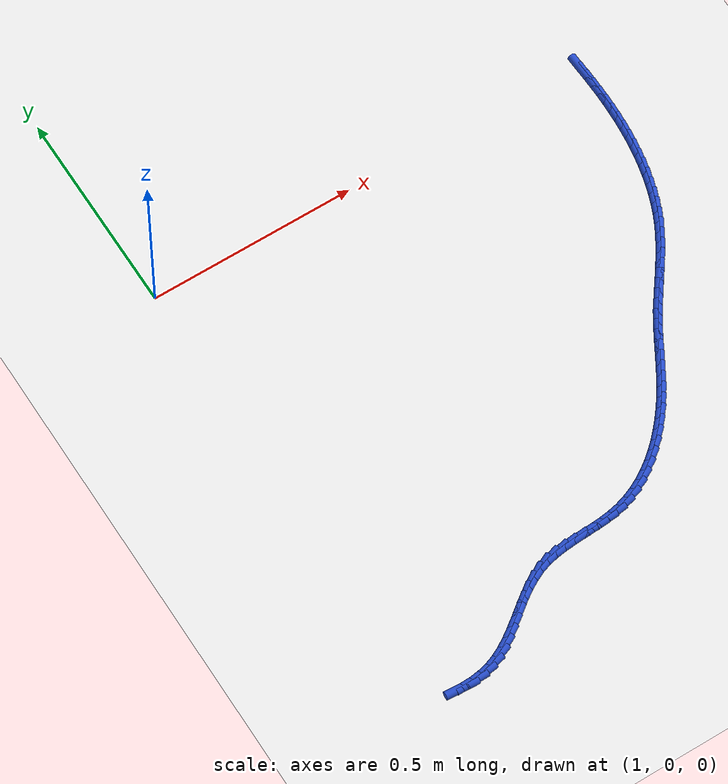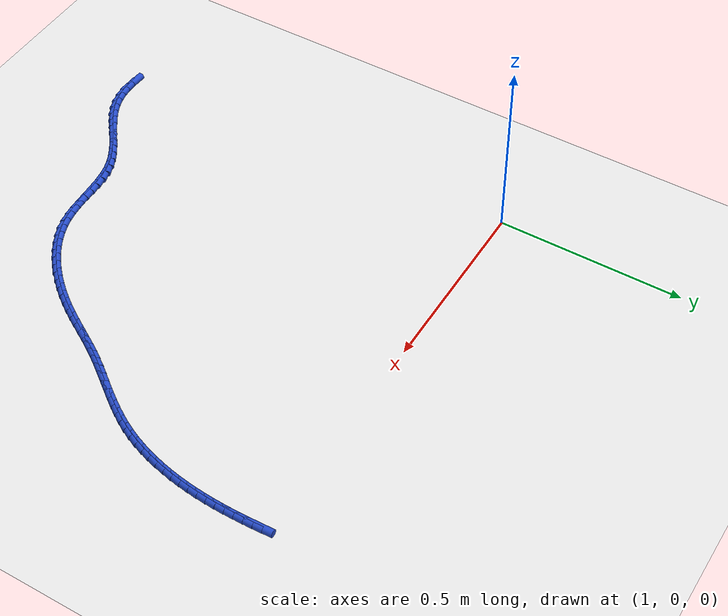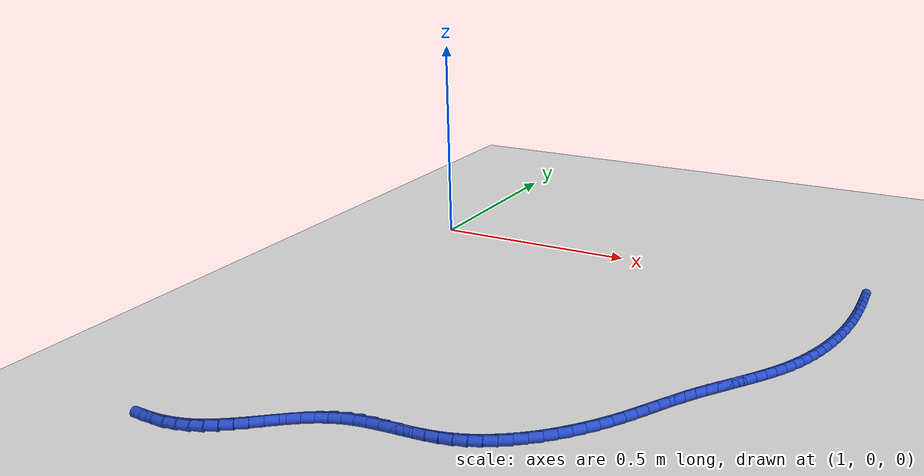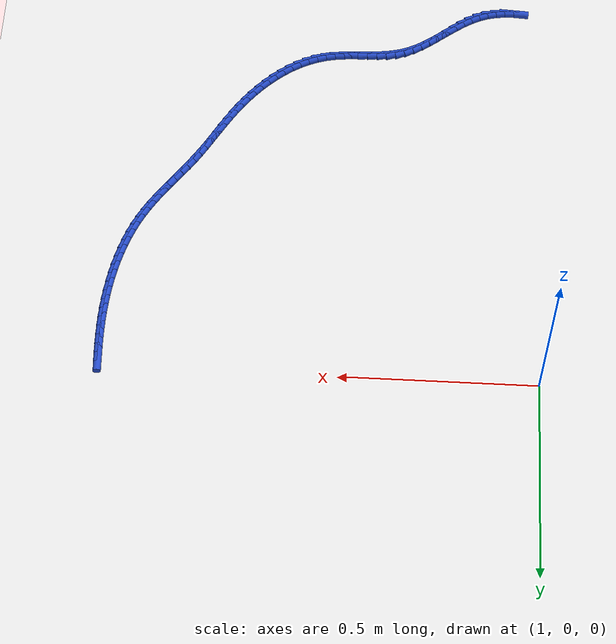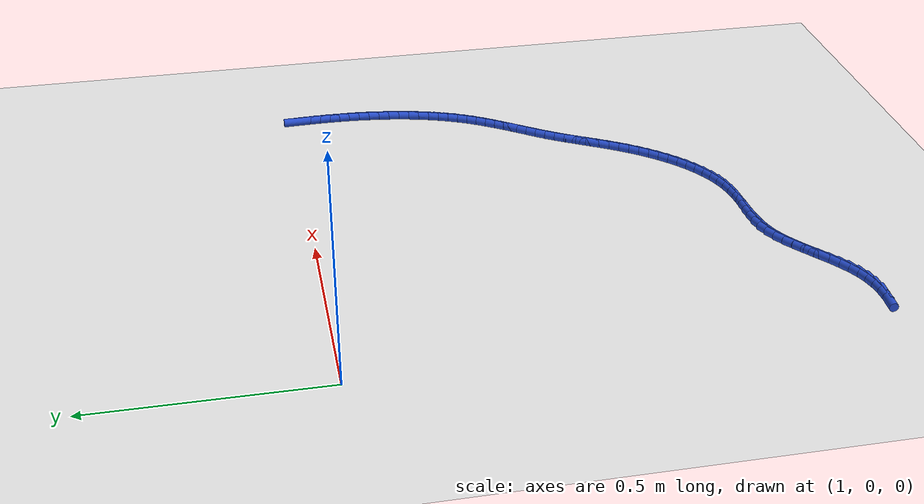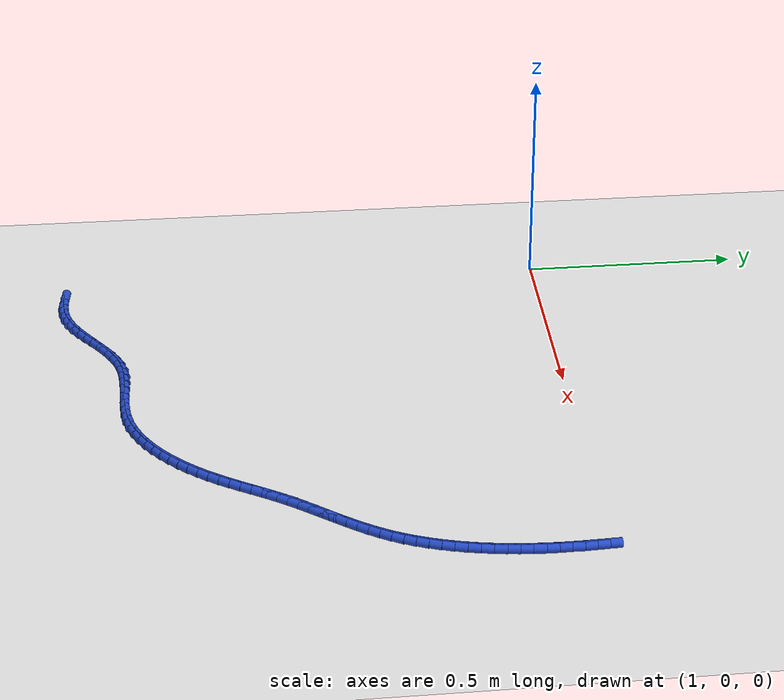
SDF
<sdf version="1.6">
 <world name="default">
  <model name="ground_plane">
   <static>1</static>
   <link name="link">
    <collision name="collision">
     <geometry><plane><normal>0 0 1</normal><size>100 100</size></plane></geometry>
     <surface><friction><ode><mu>100</mu><mu2>50</mu2></ode></friction></surface>
    </collision>
    <visual name="visual">
     <cast_shadows>0</cast_shadows>
     <geometry><plane><normal>0 0 1</normal><size>100 100</size></plane></geometry>
     <material>
      <script><uri>file://media/materials/scripts/gazebo.material</uri><name>Gazebo/WhiteGlow</name></script>
     </material>
    </visual>
   </link>
  </model>
  <model name="line">
   <link name="link_136">
    <pose>2.0960215691641086 -0.023137016944836327 0.01 0 1.57 -1.531981758546658</pose>
    <collision name="collision">
     <geometry><cylinder><radius>0.01</radius><length>0.08</length></cylinder></geometry>
    </collision>
    <visual name="visual">
     <material>
      <script><name>Gazebo/Blue</name><uri>file://media/materials/scripts/gazebo.material</uri></script>
     </material>
     <geometry><cylinder><radius>0.01</radius><length>0.08</length></cylinder></geometry>
    </visual>
   </link>
   <link name="link_137">
    <pose>2.096981438162679 -0.04785420321298706 0.01 0 1.57 -1.5467792190161405</pose>
    <collision name="collision">
     <geometry><cylinder><radius>0.01</radius><length>0.08</length></cylinder></geometry>
    </collision>
    <visual name="visual">
     <material>
      <script><name>Gazebo/Blue</name><uri>file://media/materials/scripts/gazebo.material</uri></script>
     </material>
     <geometry><cylinder><radius>0.01</radius><length>0.08</length></cylinder></geometry>
    </visual>
   </link>
   <link name="link_138">
    <pose>2.0975754370909483 -0.07258177319783748 0.01 0 1.57 -1.56413938557808</pose>
    <collision name="collision">
     <geometry><cylinder><radius>0.01</radius><length>0.08</length></cylinder></geometry>
    </collision>
    <visual name="visual">
     <material>
      <script><name>Gazebo/Blue</name><uri>file://media/materials/scripts/gazebo.material</uri></script>
     </material>
     <geometry><cylinder><radius>0.01</radius><length>0.08</length></cylinder></geometry>
    </visual>
   </link>
   <link name="link_139">
    <pose>2.097740234458197 -0.09733712667768757 0.01 0 1.57 1.5575822334074818</pose>
    <collision name="collision">
     <geometry><cylinder><radius>0.01</radius><length>0.08</length></cylinder></geometry>
    </collision>
    <visual name="visual">
     <material>
      <script><name>Gazebo/Blue</name><uri>file://media/materials/scripts/gazebo.material</uri></script>
     </material>
     <geometry><cylinder><radius>0.01</radius><length>0.08</length></cylinder></geometry>
    </visual>
   </link>
   <link name="link_140">
    <pose>2.097412498773704 -0.12213766343083951 0.01 0 1.57 1.535272686866803</pose>
    <collision name="collision">
     <geometry><cylinder><radius>0.01</radius><length>0.08</length></cylinder></geometry>
    </collision>
    <visual name="visual">
     <material>
      <script><name>Gazebo/Blue</name><uri>file://media/materials/scripts/gazebo.material</uri></script>
     </material>
     <geometry><cylinder><radius>0.01</radius><length>0.08</length></cylinder></geometry>
    </visual>
   </link>
   <link name="link_141">
    <pose>2.0965288985467496 -0.14700078323559557 0.01 0 1.57 1.510620215739051</pose>
    <collision name="collision">
     <geometry><cylinder><radius>0.01</radius><length>0.08</length></cylinder></geometry>
    </collision>
    <visual name="visual">
     <material>
      <script><name>Gazebo/Blue</name><uri>file://media/materials/scripts/gazebo.material</uri></script>
     </material>
     <geometry><cylinder><radius>0.01</radius><length>0.08</length></cylinder></geometry>
    </visual>
   </link>
   <link name="link_142">
    <pose>2.095026105995643 -0.17194387333859668 0.01 0 1.57 1.4838946201784855</pose>
    <collision name="collision">
     <geometry><cylinder><radius>0.01</radius><length>0.08</length></cylinder></geometry>
    </collision>
    <visual name="visual">
     <material>
      <script><name>Gazebo/Blue</name><uri>file://media/materials/scripts/gazebo.material</uri></script>
     </material>
     <geometry><cylinder><radius>0.01</radius><length>0.08</length></cylinder></geometry>
    </visual>
   </link>
   <link name="link_143">
    <pose>2.092846122690391 -0.19696631476491075 0.01 0 1.57 1.4555596253397634</pose>
    <collision name="collision">
     <geometry><cylinder><radius>0.01</radius><length>0.08</length></cylinder></geometry>
    </collision>
    <visual name="visual">
     <material>
      <script><name>Gazebo/Blue</name><uri>file://media/materials/scripts/gazebo.material</uri></script>
     </material>
     <geometry><cylinder><radius>0.01</radius><length>0.08</length></cylinder></geometry>
    </visual>
   </link>
   <link name="link_144">
    <pose>2.0899469189324247 -0.2220135351635099 0.01 0 1.57 1.4255700451263829</pose>
    <collision name="collision">
     <geometry><cylinder><radius>0.01</radius><length>0.08</length></cylinder></geometry>
    </collision>
    <visual name="visual">
     <material>
      <script><name>Gazebo/Blue</name><uri>file://media/materials/scripts/gazebo.material</uri></script>
     </material>
     <geometry><cylinder><radius>0.01</radius><length>0.08</length></cylinder></geometry>
    </visual>
   </link>
   <link name="link_145">
    <pose>2.086289443286903 -0.24702089955668413 0.01 0 1.57 1.3937817203476384</pose>
    <collision name="collision">
     <geometry><cylinder><radius>0.01</radius><length>0.08</length></cylinder></geometry>
    </collision>
    <visual name="visual">
     <material>
      <script><name>Gazebo/Blue</name><uri>file://media/materials/scripts/gazebo.material</uri></script>
     </material>
     <geometry><cylinder><radius>0.01</radius><length>0.08</length></cylinder></geometry>
    </visual>
   </link>
   <link name="link_146">
    <pose>2.081834644318987 -0.2719237729667205 0.01 0 1.57 1.3600476341190815</pose>
    <collision name="collision">
     <geometry><cylinder><radius>0.01</radius><length>0.08</length></cylinder></geometry>
    </collision>
    <visual name="visual">
     <material>
      <script><name>Gazebo/Blue</name><uri>file://media/materials/scripts/gazebo.material</uri></script>
     </material>
     <geometry><cylinder><radius>0.01</radius><length>0.08</length></cylinder></geometry>
    </visual>
   </link>
   <link name="link_147">
    <pose>2.076543470593835 -0.296657520415909 0.01 0 1.57 1.3242200968563693</pose>
    <collision name="collision">
     <geometry><cylinder><radius>0.01</radius><length>0.08</length></cylinder></geometry>
    </collision>
    <visual name="visual">
     <material>
      <script><name>Gazebo/Blue</name><uri>file://media/materials/scripts/gazebo.material</uri></script>
     </material>
     <geometry><cylinder><radius>0.01</radius><length>0.08</length></cylinder></geometry>
    </visual>
   </link>
   <link name="link_148">
    <pose>2.070376870676607 -0.3211575069265367 0.01 0 1.57 1.286153991188454</pose>
    <collision name="collision">
     <geometry><cylinder><radius>0.01</radius><length>0.08</length></cylinder></geometry>
    </collision>
    <visual name="visual">
     <material>
      <script><name>Gazebo/Blue</name><uri>file://media/materials/scripts/gazebo.material</uri></script>
     </material>
     <geometry><cylinder><radius>0.01</radius><length>0.08</length></cylinder></geometry>
    </visual>
   </link>
   <link name="link_149">
    <pose>2.0632957931324616 -0.34535909752089355 0.01 0 1.57 1.245711288658196</pose>
    <collision name="collision">
     <geometry><cylinder><radius>0.01</radius><length>0.08</length></cylinder></geometry>
    </collision>
    <visual name="visual">
     <material>
      <script><name>Gazebo/Blue</name><uri>file://media/materials/scripts/gazebo.material</uri></script>
     </material>
     <geometry><cylinder><radius>0.01</radius><length>0.08</length></cylinder></geometry>
    </visual>
   </link>
   <link name="link_150">
    <pose>2.05526118652656 -0.3691976572212668 0.01 0 1.57 1.2027670357043687</pose>
    <collision name="collision">
     <geometry><cylinder><radius>0.01</radius><length>0.08</length></cylinder></geometry>
    </collision>
    <visual name="visual">
     <material>
      <script><name>Gazebo/Blue</name><uri>file://media/materials/scripts/gazebo.material</uri></script>
     </material>
     <geometry><cylinder><radius>0.01</radius><length>0.08</length></cylinder></geometry>
    </visual>
   </link>
   <link name="link_151">
    <pose>2.0462339994240604 -0.3926085510499453 0.01 0 1.57 1.1572169474791136</pose>
    <collision name="collision">
     <geometry><cylinder><radius>0.01</radius><length>0.08</length></cylinder></geometry>
    </collision>
    <visual name="visual">
     <material>
      <script><name>Gazebo/Blue</name><uri>file://media/materials/scripts/gazebo.material</uri></script>
     </material>
     <geometry><cylinder><radius>0.01</radius><length>0.08</length></cylinder></geometry>
    </visual>
   </link>
   <link name="link_152">
    <pose>2.036175180390122 -0.4155271440292186 0.01 0 1.57 1.1089866239588106</pose>
    <collision name="collision">
     <geometry><cylinder><radius>0.01</radius><length>0.08</length></cylinder></geometry>
    </collision>
    <visual name="visual">
     <material>
      <script><name>Gazebo/Blue</name><uri>file://media/materials/scripts/gazebo.material</uri></script>
     </material>
     <geometry><cylinder><radius>0.01</radius><length>0.08</length></cylinder></geometry>
    </visual>
   </link>
   <link name="link_153">
    <pose>2.025045677989905 -0.4378888011813738 0.01 0 1.57 1.059930602467527</pose>
    <collision name="collision">
     <geometry><cylinder><radius>0.01</radius><length>0.08</length></cylinder></geometry>
    </collision>
    <visual name="visual">
     <material>
      <script><name>Gazebo/Blue</name><uri>file://media/materials/scripts/gazebo.material</uri></script>
     </material>
     <geometry><cylinder><radius>0.01</radius><length>0.08</length></cylinder></geometry>
    </visual>
   </link>
   <link name="link_154">
    <pose>2.0128448170767617 -0.4596567780215141 0.01 0 1.57 1.01775169581913</pose>
    <collision name="collision">
     <geometry><cylinder><radius>0.01</radius><length>0.08</length></cylinder></geometry>
    </collision>
    <visual name="visual">
     <material>
      <script><name>Gazebo/Blue</name><uri>file://media/materials/scripts/gazebo.material</uri></script>
     </material>
     <geometry><cylinder><radius>0.01</radius><length>0.08</length></cylinder></geometry>
    </visual>
   </link>
   <link name="link_155">
    <pose>1.9997269914706628 -0.4809070285591148 0.01 0 1.57 0.9844587773854454</pose>
    <collision name="collision">
     <geometry><cylinder><radius>0.01</radius><length>0.08</length></cylinder></geometry>
    </collision>
    <visual name="visual">
     <material>
      <script><name>Gazebo/Blue</name><uri>file://media/materials/scripts/gazebo.material</uri></script>
     </material>
     <geometry><cylinder><radius>0.01</radius><length>0.08</length></cylinder></geometry>
    </visual>
   </link>
   <link name="link_156">
    <pose>1.9858857571612398 -0.5017439684465826 0.01 0 1.57 0.9600227748784873</pose>
    <collision name="collision">
     <geometry><cylinder><radius>0.01</radius><length>0.08</length></cylinder></geometry>
    </collision>
    <visual name="visual">
     <material>
      <script><name>Gazebo/Blue</name><uri>file://media/materials/scripts/gazebo.material</uri></script>
     </material>
     <geometry><cylinder><radius>0.01</radius><length>0.08</length></cylinder></geometry>
    </visual>
   </link>
   <link name="link_157">
    <pose>1.97151467013962 -0.5222720133374082 0.01 0 1.57 0.9443659795065273</pose>
    <collision name="collision">
     <geometry><cylinder><radius>0.01</radius><length>0.08</length></cylinder></geometry>
    </collision>
    <visual name="visual">
     <material>
      <script><name>Gazebo/Blue</name><uri>file://media/materials/scripts/gazebo.material</uri></script>
     </material>
     <geometry><cylinder><radius>0.01</radius><length>0.08</length></cylinder></geometry>
    </visual>
   </link>
   <link name="link_158">
    <pose>1.9568072863969284 -0.5425955788850849 0.01 0 1.57 0.9374189420537204</pose>
    <collision name="collision">
     <geometry><cylinder><radius>0.01</radius><length>0.08</length></cylinder></geometry>
    </collision>
    <visual name="visual">
     <material>
      <script><name>Gazebo/Blue</name><uri>file://media/materials/scripts/gazebo.material</uri></script>
     </material>
     <geometry><cylinder><radius>0.01</radius><length>0.08</length></cylinder></geometry>
    </visual>
   </link>
   <link name="link_159">
    <pose>1.9419571619242932 -0.5628190807431036 0.01 0 1.57 0.9391559052237717</pose>
    <collision name="collision">
     <geometry><cylinder><radius>0.01</radius><length>0.08</length></cylinder></geometry>
    </collision>
    <visual name="visual">
     <material>
      <script><name>Gazebo/Blue</name><uri>file://media/materials/scripts/gazebo.material</uri></script>
     </material>
     <geometry><cylinder><radius>0.01</radius><length>0.08</length></cylinder></geometry>
    </visual>
   </link>
   <link name="link_160">
    <pose>1.9271578527128406 -0.5830469345649566 0.01 0 1.57 0.949610395474672</pose>
    <collision name="collision">
     <geometry><cylinder><radius>0.01</radius><length>0.08</length></cylinder></geometry>
    </collision>
    <visual name="visual">
     <material>
      <script><name>Gazebo/Blue</name><uri>file://media/materials/scripts/gazebo.material</uri></script>
     </material>
     <geometry><cylinder><radius>0.01</radius><length>0.08</length></cylinder></geometry>
    </visual>
   </link>
   <link name="link_161">
    <pose>1.9126029147536967 -0.603383556004137 0.01 0 1.57 0.9688718936118315</pose>
    <collision name="collision">
     <geometry><cylinder><radius>0.01</radius><length>0.08</length></cylinder></geometry>
    </collision>
    <visual name="visual">
     <material>
      <script><name>Gazebo/Blue</name><uri>file://media/materials/scripts/gazebo.material</uri></script>
     </material>
     <geometry><cylinder><radius>0.01</radius><length>0.08</length></cylinder></geometry>
    </visual>
   </link>
   <link name="link_162">
    <pose>1.8984859040379893 -0.6239333607141353 0.01 0 1.57 0.9962435183382278</pose>
    <collision name="collision">
     <geometry><cylinder><radius>0.01</radius><length>0.08</length></cylinder></geometry>
    </collision>
    <visual name="visual">
     <material>
      <script><name>Gazebo/Blue</name><uri>file://media/materials/scripts/gazebo.material</uri></script>
     </material>
     <geometry><cylinder><radius>0.01</radius><length>0.08</length></cylinder></geometry>
    </visual>
   </link>
   <link name="link_163">
    <pose>1.8849817230381993 -0.6447921159871526 0.01 0 1.57 1.0212751937375575</pose>
    <collision name="collision">
     <geometry><cylinder><radius>0.01</radius><length>0.08</length></cylinder></geometry>
    </collision>
    <visual name="visual">
     <material>
      <script><name>Gazebo/Blue</name><uri>file://media/materials/scripts/gazebo.material</uri></script>
     </material>
     <geometry><cylinder><radius>0.01</radius><length>0.08</length></cylinder></geometry>
    </visual>
   </link>
   <link name="link_164">
    <pose>1.8720267199861922 -0.6659449878234803 0.01 0 1.57 1.0365650371517503</pose>
    <collision name="collision">
     <geometry><cylinder><radius>0.01</radius><length>0.08</length></cylinder></geometry>
    </collision>
    <visual name="visual">
     <material>
      <script><name>Gazebo/Blue</name><uri>file://media/materials/scripts/gazebo.material</uri></script>
     </material>
     <geometry><cylinder><radius>0.01</radius><length>0.08</length></cylinder></geometry>
    </visual>
   </link>
   <link name="link_165">
    <pose>1.859392360566365 -0.6873006974588373 0.01 0 1.57 1.0418932382143424</pose>
    <collision name="collision">
     <geometry><cylinder><radius>0.01</radius><length>0.08</length></cylinder></geometry>
    </collision>
    <visual name="visual">
     <material>
      <script><name>Gazebo/Blue</name><uri>file://media/materials/scripts/gazebo.material</uri></script>
     </material>
     <geometry><cylinder><radius>0.01</radius><length>0.08</length></cylinder></geometry>
    </visual>
   </link>
   <link name="link_166">
    <pose>1.846846824348453 -0.7087664425822348 0.01 0 1.57 1.037293572612903</pose>
    <collision name="collision">
     <geometry><cylinder><radius>0.01</radius><length>0.08</length></cylinder></geometry>
    </collision>
    <visual name="visual">
     <material>
      <script><name>Gazebo/Blue</name><uri>file://media/materials/scripts/gazebo.material</uri></script>
     </material>
     <geometry><cylinder><radius>0.01</radius><length>0.08</length></cylinder></geometry>
    </visual>
   </link>
   <link name="link_167">
    <pose>1.8341582909021894 -0.7302494208826861 0.01 0 1.57 1.0228918419294106</pose>
    <collision name="collision">
     <geometry><cylinder><radius>0.01</radius><length>0.08</length></cylinder></geometry>
    </collision>
    <visual name="visual">
     <material>
      <script><name>Gazebo/Blue</name><uri>file://media/materials/scripts/gazebo.material</uri></script>
     </material>
     <geometry><cylinder><radius>0.01</radius><length>0.08</length></cylinder></geometry>
    </visual>
   </link>
   <link name="link_168">
    <pose>1.821094939797308 -0.751656830049202 0.01 0 1.57 0.9989152646405255</pose>
    <collision name="collision">
     <geometry><cylinder><radius>0.01</radius><length>0.08</length></cylinder></geometry>
    </collision>
    <visual name="visual">
     <material>
      <script><name>Gazebo/Blue</name><uri>file://media/materials/scripts/gazebo.material</uri></script>
     </material>
     <geometry><cylinder><radius>0.01</radius><length>0.08</length></cylinder></geometry>
    </visual>
   </link>
   <link name="link_169">
    <pose>1.8074249506035422 -0.7728958677707962 0.01 0 1.57 0.965741059542414</pose>
    <collision name="collision">
     <geometry><cylinder><radius>0.01</radius><length>0.08</length></cylinder></geometry>
    </collision>
    <visual name="visual">
     <material>
      <script><name>Gazebo/Blue</name><uri>file://media/materials/scripts/gazebo.material</uri></script>
     </material>
     <geometry><cylinder><radius>0.01</radius><length>0.08</length></cylinder></geometry>
    </visual>
   </link>
   <link name="link_170">
    <pose>1.7929171393759122 -0.7938735243992755 0.01 0 1.57 0.9258160499877628</pose>
    <collision name="collision">
     <geometry><cylinder><radius>0.01</radius><length>0.08</length></cylinder></geometry>
    </collision>
    <visual name="visual">
     <material>
      <script><name>Gazebo/Blue</name><uri>file://media/materials/scripts/gazebo.material</uri></script>
     </material>
     <geometry><cylinder><radius>0.01</radius><length>0.08</length></cylinder></geometry>
    </visual>
   </link>
   <link name="link_171">
    <pose>1.7774219856646445 -0.8144701881306404 0.01 0 1.57 0.8829315103672137</pose>
    <collision name="collision">
     <geometry><cylinder><radius>0.01</radius><length>0.08</length></cylinder></geometry>
    </collision>
    <visual name="visual">
     <material>
      <script><name>Gazebo/Blue</name><uri>file://media/materials/scripts/gazebo.material</uri></script>
     </material>
     <geometry><cylinder><radius>0.01</radius><length>0.08</length></cylinder></geometry>
    </visual>
   </link>
   <link name="link_172">
    <pose>1.7609511356240097 -0.8345137466023365 0.01 0 1.57 0.8369794507042847</pose>
    <collision name="collision">
     <geometry><cylinder><radius>0.01</radius><length>0.08</length></cylinder></geometry>
    </collision>
    <visual name="visual">
     <material>
      <script><name>Gazebo/Blue</name><uri>file://media/materials/scripts/gazebo.material</uri></script>
     </material>
     <geometry><cylinder><radius>0.01</radius><length>0.08</length></cylinder></geometry>
    </visual>
   </link>
   <link name="link_173">
    <pose>1.7435351153436893 -0.8538259372499057 0.01 0 1.57 0.7873554034019677</pose>
    <collision name="collision">
     <geometry><cylinder><radius>0.01</radius><length>0.08</length></cylinder></geometry>
    </collision>
    <visual name="visual">
     <material>
      <script><name>Gazebo/Blue</name><uri>file://media/materials/scripts/gazebo.material</uri></script>
     </material>
     <geometry><cylinder><radius>0.01</radius><length>0.08</length></cylinder></geometry>
    </visual>
   </link>
   <link name="link_174">
    <pose>1.7252044509133644 -0.8722284975088935 0.01 0 1.57 0.7334290184506793</pose>
    <collision name="collision">
     <geometry><cylinder><radius>0.01</radius><length>0.08</length></cylinder></geometry>
    </collision>
    <visual name="visual">
     <material>
      <script><name>Gazebo/Blue</name><uri>file://media/materials/scripts/gazebo.material</uri></script>
     </material>
     <geometry><cylinder><radius>0.01</radius><length>0.08</length></cylinder></geometry>
    </visual>
   </link>
   <link name="link_175">
    <pose>1.7059896684227185 -0.8895431648148425 0.01 0 1.57 0.6745529048477914</pose>
    <collision name="collision">
     <geometry><cylinder><radius>0.01</radius><length>0.08</length></cylinder></geometry>
    </collision>
    <visual name="visual">
     <material>
      <script><name>Gazebo/Blue</name><uri>file://media/materials/scripts/gazebo.material</uri></script>
     </material>
     <geometry><cylinder><radius>0.01</radius><length>0.08</length></cylinder></geometry>
    </visual>
   </link>
   <link name="link_176">
    <pose>1.6859212939614305 -0.9055916766032972 0.01 0 1.57 0.6100859202117728</pose>
    <collision name="collision">
     <geometry><cylinder><radius>0.01</radius><length>0.08</length></cylinder></geometry>
    </collision>
    <visual name="visual">
     <material>
      <script><name>Gazebo/Blue</name><uri>file://media/materials/scripts/gazebo.material</uri></script>
     </material>
     <geometry><cylinder><radius>0.01</radius><length>0.08</length></cylinder></geometry>
    </visual>
   </link>
   <link name="link_177">
    <pose>1.6650298536191843 -0.9201957703098004 0.01 0 1.57 0.5394363909906351</pose>
    <collision name="collision">
     <geometry><cylinder><radius>0.01</radius><length>0.08</length></cylinder></geometry>
    </collision>
    <visual name="visual">
     <material>
      <script><name>Gazebo/Blue</name><uri>file://media/materials/scripts/gazebo.material</uri></script>
     </material>
     <geometry><cylinder><radius>0.01</radius><length>0.08</length></cylinder></geometry>
    </visual>
   </link>
   <link name="link_178">
    <pose>1.64334587348566 -0.9331771833698969 0.01 0 1.57 0.46213074893825135</pose>
    <collision name="collision">
     <geometry><cylinder><radius>0.01</radius><length>0.08</length></cylinder></geometry>
    </collision>
    <visual name="visual">
     <material>
      <script><name>Gazebo/Blue</name><uri>file://media/materials/scripts/gazebo.material</uri></script>
     </material>
     <geometry><cylinder><radius>0.01</radius><length>0.08</length></cylinder></geometry>
    </visual>
   </link>
   <link name="link_179">
    <pose>1.620899879650541 -0.9443576532191298 0.01 0 1.57 0.37791019043460955</pose>
    <collision name="collision">
     <geometry><cylinder><radius>0.01</radius><length>0.08</length></cylinder></geometry>
    </collision>
    <visual name="visual">
     <material>
      <script><name>Gazebo/Blue</name><uri>file://media/materials/scripts/gazebo.material</uri></script>
     </material>
     <geometry><cylinder><radius>0.01</radius><length>0.08</length></cylinder></geometry>
    </visual>
   </link>
   <link name="link_180">
    <pose>1.5977223982035063 -0.953558917293043 0.01 0 1.57 0.2868500602263218</pose>
    <collision name="collision">
     <geometry><cylinder><radius>0.01</radius><length>0.08</length></cylinder></geometry>
    </collision>
    <visual name="visual">
     <material>
      <script><name>Gazebo/Blue</name><uri>file://media/materials/scripts/gazebo.material</uri></script>
     </material>
     <geometry><cylinder><radius>0.01</radius><length>0.08</length></cylinder></geometry>
    </visual>
   </link>
   <link name="link_181">
    <pose>1.5738439552342403 -0.96060271302718 0.01 0 1.57 0.19348771131521325</pose>
    <collision name="collision">
     <geometry><cylinder><radius>0.01</radius><length>0.08</length></cylinder></geometry>
    </collision>
    <visual name="visual">
     <material>
      <script><name>Gazebo/Blue</name><uri>file://media/materials/scripts/gazebo.material</uri></script>
     </material>
     <geometry><cylinder><radius>0.01</radius><length>0.08</length></cylinder></geometry>
    </visual>
   </link>
   <link name="link_182">
    <pose>1.549314995547461 -0.9654088926339105 0.01 0 1.57 0.11997735190361533</pose>
    <collision name="collision">
     <geometry><cylinder><radius>0.01</radius><length>0.08</length></cylinder></geometry>
    </collision>
    <visual name="visual">
     <material>
      <script><name>Gazebo/Blue</name><uri>file://media/materials/scripts/gazebo.material</uri></script>
     </material>
     <geometry><cylinder><radius>0.01</radius><length>0.08</length></cylinder></geometry>
    </visual>
   </link>
   <link name="link_183">
    <pose>1.5242931805836055 -0.9684254315637556 0.01 0 1.57 0.0730023191394145</pose>
    <collision name="collision">
     <geometry><cylinder><radius>0.01</radius><length>0.08</length></cylinder></geometry>
    </collision>
    <visual name="visual">
     <material>
      <script><name>Gazebo/Blue</name><uri>file://media/materials/scripts/gazebo.material</uri></script>
     </material>
     <geometry><cylinder><radius>0.01</radius><length>0.08</length></cylinder></geometry>
    </visual>
   </link>
   <link name="link_184">
    <pose>1.4989720881893518 -0.9702772208049946 0.01 0 1.57 0.05155572952244593</pose>
    <collision name="collision">
     <geometry><cylinder><radius>0.01</radius><length>0.08</length></cylinder></geometry>
    </collision>
    <visual name="visual">
     <material>
      <script><name>Gazebo/Blue</name><uri>file://media/materials/scripts/gazebo.material</uri></script>
     </material>
     <geometry><cylinder><radius>0.01</radius><length>0.08</length></cylinder></geometry>
    </visual>
   </link>
   <link name="link_185">
    <pose>1.473545322120034 -0.9715892789657148 0.01 0 1.57 0.05509060347397553</pose>
    <collision name="collision">
     <geometry><cylinder><radius>0.01</radius><length>0.08</length></cylinder></geometry>
    </collision>
    <visual name="visual">
     <material>
      <script><name>Gazebo/Blue</name><uri>file://media/materials/scripts/gazebo.material</uri></script>
     </material>
     <geometry><cylinder><radius>0.01</radius><length>0.08</length></cylinder></geometry>
    </visual>
   </link>
   <link name="link_186">
    <pose>1.4482064861309925 -0.9729866246540049 0.01 0 1.57 0.0839157475574914</pose>
    <collision name="collision">
     <geometry><cylinder><radius>0.01</radius><length>0.08</length></cylinder></geometry>
    </collision>
    <visual name="visual">
     <material>
      <script><name>Gazebo/Blue</name><uri>file://media/materials/scripts/gazebo.material</uri></script>
     </material>
     <geometry><cylinder><radius>0.01</radius><length>0.08</length></cylinder></geometry>
    </visual>
   </link>
   <link name="link_187">
    <pose>1.4231491839775632 -0.975094276477954 0.01 0 1.57 0.13915473171063514</pose>
    <collision name="collision">
     <geometry><cylinder><radius>0.01</radius><length>0.08</length></cylinder></geometry>
    </collision>
    <visual name="visual">
     <material>
      <script><name>Gazebo/Blue</name><uri>file://media/materials/scripts/gazebo.material</uri></script>
     </material>
     <geometry><cylinder><radius>0.01</radius><length>0.08</length></cylinder></geometry>
    </visual>
   </link>
   <link name="link_188">
    <pose>1.398567019415084 -0.9785372530456491 0.01 0 1.57 0.2222217420895515</pose>
    <collision name="collision">
     <geometry><cylinder><radius>0.01</radius><length>0.08</length></cylinder></geometry>
    </collision>
    <visual name="visual">
     <material>
      <script><name>Gazebo/Blue</name><uri>file://media/materials/scripts/gazebo.material</uri></script>
     </material>
     <geometry><cylinder><radius>0.01</radius><length>0.08</length></cylinder></geometry>
    </visual>
   </link>
   <link name="link_189">
    <pose>1.3746535961988924 -0.9839405729651798 0.01 0 1.57 0.33301932117528105</pose>
    <collision name="collision">
     <geometry><cylinder><radius>0.01</radius><length>0.08</length></cylinder></geometry>
    </collision>
    <visual name="visual">
     <material>
      <script><name>Gazebo/Blue</name><uri>file://media/materials/scripts/gazebo.material</uri></script>
     </material>
     <geometry><cylinder><radius>0.01</radius><length>0.08</length></cylinder></geometry>
    </visual>
   </link>
   <link name="link_190">
    <pose>1.3515981697399992 -0.9919154894322514 0.01 0 1.57 0.44767465173047233</pose>
    <collision name="collision">
     <geometry><cylinder><radius>0.01</radius><length>0.08</length></cylinder></geometry>
    </collision>
    <visual name="visual">
     <material>
      <script><name>Gazebo/Blue</name><uri>file://media/materials/scripts/gazebo.material</uri></script>
     </material>
     <geometry><cylinder><radius>0.01</radius><length>0.08</length></cylinder></geometry>
    </visual>
   </link>
   <link name="link_191">
    <pose>1.3294282629298853 -1.0025612642593014 0.01 0 1.57 0.536511324429873</pose>
    <collision name="collision">
     <geometry><cylinder><radius>0.01</radius><length>0.08</length></cylinder></geometry>
    </collision>
    <visual name="visual">
     <material>
      <script><name>Gazebo/Blue</name><uri>file://media/materials/scripts/gazebo.material</uri></script>
     </material>
     <geometry><cylinder><radius>0.01</radius><length>0.08</length></cylinder></geometry>
    </visual>
   </link>
   <link name="link_192">
    <pose>1.307965435807327 -1.0153251493465585 0.01 0 1.57 0.5985670779568787</pose>
    <collision name="collision">
     <geometry><cylinder><radius>0.01</radius><length>0.08</length></cylinder></geometry>
    </collision>
    <visual name="visual">
     <material>
      <script><name>Gazebo/Blue</name><uri>file://media/materials/scripts/gazebo.material</uri></script>
     </material>
     <geometry><cylinder><radius>0.01</radius><length>0.08</length></cylinder></geometry>
    </visual>
   </link>
   <link name="link_193">
    <pose>1.28701789161633 -1.0296121134229428 0.01 0 1.57 0.6356027491017876</pose>
    <collision name="collision">
     <geometry><cylinder><radius>0.01</radius><length>0.08</length></cylinder></geometry>
    </collision>
    <visual name="visual">
     <material>
      <script><name>Gazebo/Blue</name><uri>file://media/materials/scripts/gazebo.material</uri></script>
     </material>
     <geometry><cylinder><radius>0.01</radius><length>0.08</length></cylinder></geometry>
    </visual>
   </link>
   <link name="link_194">
    <pose>1.2663938336009006 -1.0448271252173742 0.01 0 1.57 0.6490603967645128</pose>
    <collision name="collision">
     <geometry><cylinder><radius>0.01</radius><length>0.08</length></cylinder></geometry>
    </collision>
    <visual name="visual">
     <material>
      <script><name>Gazebo/Blue</name><uri>file://media/materials/scripts/gazebo.material</uri></script>
     </material>
     <geometry><cylinder><radius>0.01</radius><length>0.08</length></cylinder></geometry>
    </visual>
   </link>
   <link name="link_195">
    <pose>1.2459014650050466 -1.0603751534587715 0.01 0 1.57 0.6394925227102979</pose>
    <collision name="collision">
     <geometry><cylinder><radius>0.01</radius><length>0.08</length></cylinder></geometry>
    </collision>
    <visual name="visual">
     <material>
      <script><name>Gazebo/Blue</name><uri>file://media/materials/scripts/gazebo.material</uri></script>
     </material>
     <geometry><cylinder><radius>0.01</radius><length>0.08</length></cylinder></geometry>
    </visual>
   </link>
   <link name="link_196">
    <pose>1.2253489890727738 -1.0756611668760552 0.01 0 1.57 0.6063868819994803</pose>
    <collision name="collision">
     <geometry><cylinder><radius>0.01</radius><length>0.08</length></cylinder></geometry>
    </collision>
    <visual name="visual">
     <material>
      <script><name>Gazebo/Blue</name><uri>file://media/materials/scripts/gazebo.material</uri></script>
     </material>
     <geometry><cylinder><radius>0.01</radius><length>0.08</length></cylinder></geometry>
    </visual>
   </link>
   <link name="link_197">
    <pose>1.20454460904809 -1.0900901341981448 0.01 0 1.57 0.5482735698270325</pose>
    <collision name="collision">
     <geometry><cylinder><radius>0.01</radius><length>0.08</length></cylinder></geometry>
    </collision>
    <visual name="visual">
     <material>
      <script><name>Gazebo/Blue</name><uri>file://media/materials/scripts/gazebo.material</uri></script>
     </material>
     <geometry><cylinder><radius>0.01</radius><length>0.08</length></cylinder></geometry>
    </visual>
   </link>
   <link name="link_198">
    <pose>1.1832965281749999 -1.103067024153959 0.01 0 1.57 0.4632085380073463</pose>
    <collision name="collision">
     <geometry><cylinder><radius>0.01</radius><length>0.08</length></cylinder></geometry>
    </collision>
    <visual name="visual">
     <material>
      <script><name>Gazebo/Blue</name><uri>file://media/materials/scripts/gazebo.material</uri></script>
     </material>
     <geometry><cylinder><radius>0.01</radius><length>0.08</length></cylinder></geometry>
    </visual>
   </link>
   <link name="link_199">
    <pose>1.161412949697512 -1.1139968054724179 0.01 0 1.57 0.35057963712685297</pose>
    <collision name="collision">
     <geometry><cylinder><radius>0.01</radius><length>0.08</length></cylinder></geometry>
    </collision>
    <visual name="visual">
     <material>
      <script><name>Gazebo/Blue</name><uri>file://media/materials/scripts/gazebo.material</uri></script>
     </material>
     <geometry><cylinder><radius>0.01</radius><length>0.08</length></cylinder></geometry>
    </visual>
   </link>
   <link name="link_200">
    <pose>1.138708288942199 -1.1222995708124281 0.01 0 1.57 0.2287300013599456</pose>
    <collision name="collision">
     <geometry><cylinder><radius>0.01</radius><length>0.08</length></cylinder></geometry>
    </collision>
    <visual name="visual">
     <material>
      <script><name>Gazebo/Blue</name><uri>file://media/materials/scripts/gazebo.material</uri></script>
     </material>
     <geometry><cylinder><radius>0.01</radius><length>0.08</length></cylinder></geometry>
    </visual>
   </link>
   <link name="link_201">
    <pose>1.115156012236654 -1.127782638240417 0.01 0 1.57 0.11821770715613211</pose>
    <collision name="collision">
     <geometry><cylinder><radius>0.01</radius><length>0.08</length></cylinder></geometry>
    </collision>
    <visual name="visual">
     <material>
      <script><name>Gazebo/Blue</name><uri>file://media/materials/scripts/gazebo.material</uri></script>
     </material>
     <geometry><cylinder><radius>0.01</radius><length>0.08</length></cylinder></geometry>
    </visual>
   </link>
   <link name="link_202">
    <pose>1.0908981772422655 -1.130663778114954 0.01 0 1.57 0.02082286683808031</pose>
    <collision name="collision">
     <geometry><cylinder><radius>0.01</radius><length>0.08</length></cylinder></geometry>
    </collision>
    <visual name="visual">
     <material>
      <script><name>Gazebo/Blue</name><uri>file://media/materials/scripts/gazebo.material</uri></script>
     </material>
     <geometry><cylinder><radius>0.01</radius><length>0.08</length></cylinder></geometry>
    </visual>
   </link>
   <link name="link_203">
    <pose>1.0660849637995042 -1.1311805350436426 0.01 0 1.57 -0.06375893320795666</pose>
    <collision name="collision">
     <geometry><cylinder><radius>0.01</radius><length>0.08</length></cylinder></geometry>
    </collision>
    <visual name="visual">
     <material>
      <script><name>Gazebo/Blue</name><uri>file://media/materials/scripts/gazebo.material</uri></script>
     </material>
     <geometry><cylinder><radius>0.01</radius><length>0.08</length></cylinder></geometry>
    </visual>
   </link>
  </model>
 </world>
</sdf>
